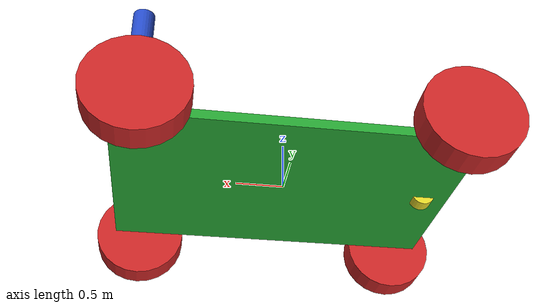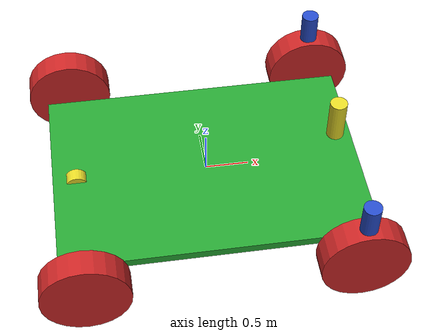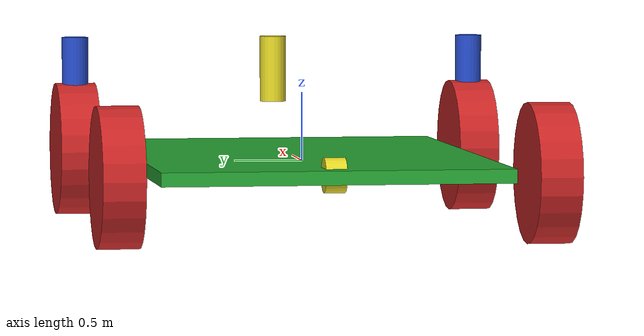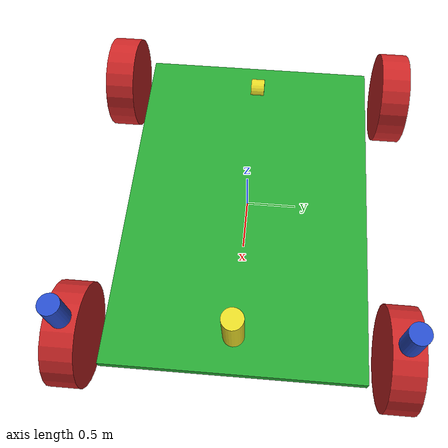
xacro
<?xml version="1.0"?>
<robot name="steer_bot" xmlns:xacro="http://wiki.ros.org/xacro">
  <!-- Include xacro for inertials, materials and wheels -->
  <xacro:include filename="$(find steer_bot_description)/urdf/wheel.xacro" />

  <xacro:property name="robot_namespace" value="/steer_bot" />

  <!-- Gazebo plugins -->
  <gazebo>
    <!-- Load ros_control plugin using the steer_bot_hardware_gazebo
    implementation of the hardware_interface::RobotHW -->

    <plugin name="gazebo_ros_control" filename="libgazebo_ros_control.so">
      <robotNamespace>${robot_namespace}</robotNamespace>
      <robotSimType>steer_bot_hardware_gazebo/SteerBotHardwareGazebo</robotSimType>
      <legacyModeNS>false</legacyModeNS>
    </plugin>

    <plugin name="p3d_base_controller" filename="libgazebo_ros_p3d.so">
      <alwaysOn>true</alwaysOn>
      <updateRate>50.0</updateRate>
      <bodyName>base_link</bodyName>
      <topicName>odom</topicName>
      <gaussianNoise>0.01</gaussianNoise>
      <frameName>map</frameName>
      <xyzOffsets>0 0 0</xyzOffsets>
      <rpyOffsets>0 0 0</rpyOffsets>
    </plugin>

  </gazebo>

  <!-- Math constants -->
  <xacro:property name="deg_to_rad" value="0.01745329251994329577" />

  <!-- Robot base dimensions -->
  <xacro:property name="base_length" value="3.6" />
  <xacro:property name="base_width" value="2.5" />
  <xacro:property name="base_height" value="0.1" />
  <xacro:property name="base_mass" value="0.0001" />

  <!-- Wheel link dimensions -->
  <xacro:property name="wheel_radius" value="0.5" />
  <xacro:property name="wheel_thickness" value="0.3" />
  <xacro:property name="wheel_mass" value="0.0001" />

  <!-- Steering link dimensions -->
  <xacro:property name="steer_radius" value="0.1" />
  <xacro:property name="steer_thickness" value="0.5" />
  <xacro:property name="steer_mass" value="0.0001" />

  <!-- Axle positions -->
  <xacro:property name="axle_offset" value="0.275" />
  <xacro:property name="steer_offset" value="0.1" />

  <!-- Base link -->
  <link name="base_link">
    <kinematic>true</kinematic>
  </link>

  <!-- A fixed joint for to connect base and chassis links -->
  <joint name="base_link" type="fixed">
    <origin xyz="0 0 0" rpy="0 0 0" />
    <parent link="base_link" />
    <child link="chassis_link" />
  </joint>

  <!-- Dummy Chassis link -->
  <link name="chassis_link">
    <visual>
      <origin xyz="0 0 0" rpy="0 0 0" />
      <geometry>
        <box size="${base_length} ${base_width} ${base_height}" />
      </geometry>
      <material name="green" />
    </visual>
    <collision>
      <origin xyz="0 0 0" rpy="0 0 0" />
      <geometry>
        <box size="${base_length} ${base_width} ${base_height}" />
      </geometry>
    </collision>
    <xacro:solid_cuboid_inertial rpy="0 0 0" xyz="0 0 0" mass="${base_mass}" x="${base_length}" y="${base_width}" z="${base_height}" />
  </link>

  <!-- Front steer and rear wheel joints required for ackermann_steering_controller -->
  <xacro:front_steer name="front" parent="chassis" steer_radius="${steer_radius}" steer_thickness="${steer_thickness}" steer_mass="${steer_mass}" base_length="${base_length}" base_width="${base_width}" axle_offset="${axle_offset}" steer_height="${wheel_radius+steer_offset}"></xacro:front_steer>

  <xacro:rear_wheel name="rear" parent="chassis" wheel_radius="${wheel_radius/4}" wheel_thickness="${wheel_thickness/2}" wheel_mass="${wheel_mass/32}">
    <origin xyz="${-base_length/2+axle_offset} 0 0" rpy="${-90 * deg_to_rad} 0 0" />
  </xacro:rear_wheel>

  <!-- Steerable front wheels -->
  <xacro:front_wheel_lr name="front_right" parent="chassis" reflect="-1" wheel_radius="${wheel_radius}" wheel_thickness="${wheel_thickness}" wheel_mass="${wheel_mass}" steer_radius="${steer_radius}" steer_thickness="${steer_thickness}" steer_mass="${steer_mass}" base_length="${base_length}" base_width="${base_width}" axle_offset="${axle_offset}" steer_height="${wheel_radius+steer_offset}"></xacro:front_wheel_lr>
  <xacro:front_wheel_lr name="front_left" parent="chassis" reflect="1" wheel_radius="${wheel_radius}" wheel_thickness="${wheel_thickness}" wheel_mass="${wheel_mass}" steer_radius="${steer_radius}" steer_thickness="${steer_thickness}" steer_mass="${steer_mass}" base_length="${base_length}" base_width="${base_width}" axle_offset="${axle_offset}" steer_height="${wheel_radius+steer_offset}"></xacro:front_wheel_lr>

  <!-- Rear wheels -->
  <xacro:rear_wheel_lr name="rear_right" parent="chassis" wheel_radius="${wheel_radius}" wheel_thickness="${wheel_thickness}" wheel_mass="${wheel_mass}">
    <origin xyz="${-base_length/2+axle_offset} ${-base_width/2-axle_offset} 0" rpy="${-90 * deg_to_rad} 0 0" />
  </xacro:rear_wheel_lr>
  <xacro:rear_wheel_lr name="rear_left" parent="chassis" wheel_radius="${wheel_radius}" wheel_thickness="${wheel_thickness}" wheel_mass="${wheel_mass}">
    <origin xyz="${-base_length/2+axle_offset} ${+base_width/2+axle_offset} 0" rpy="${-90 * deg_to_rad} 0 0" />
  </xacro:rear_wheel_lr>

  <!-- Colour -->
  <gazebo reference="chassis_link">
    <material>Gazebo/Green</material>
    <velocity_decay>
      <linear>0.5</linear>
      <angular>0.5</angular>
    </velocity_decay>
  </gazebo>
  <gazebo reference="base_link">
    <velocity_decay>
      <linear>0.5</linear>
      <angular>0.5</angular>
    </velocity_decay>
  </gazebo>

</robot>

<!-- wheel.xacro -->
<robot name="wheel" xmlns:xacro="http://wiki.ros.org/xacro">
  <!-- Include xacro for materials and inertials -->
  <xacro:include filename="$(find steer_bot_description)/urdf/materials.xacro" />
  <xacro:include filename="$(find steer_bot_description)/urdf/inertials.xacro" />

  <!-- Properties -->
  <xacro:property name="steer_effort" value="100.0" />
  <xacro:property name="steer_velocity" value="5.0" />
  <xacro:property name="steer_limit_deg" value="45.0" />

  <!-- Bicycle model front steering link (required for steer_drive_controller) -->
  <xacro:macro name="front_steer" params="
      name
      parent
      steer_radius
      steer_thickness
      steer_mass
      base_length
      base_width
      axle_offset
      steer_height">
    <link name="${name}_steer_link">
      <kinematic>true</kinematic>

      <visual>
        <origin xyz="0 0 0" rpy="0 0 0" />
        <geometry>
          <cylinder radius="${steer_radius}" length="${steer_thickness}" />
        </geometry>
        <material name="yellow" />
      </visual>
      <collision>
        <origin xyz="0 0 0" rpy="0 0 0" />
        <geometry>
          <cylinder radius="${steer_radius}" length="${steer_thickness}" />
        </geometry>
        <surface>
          <friction>
            <ode>
              <mu>10000000.0</mu>
              <mu2>10000000.0</mu2>
              <slip1>0.0</slip1>
              <slip2>0.0</slip2>
            </ode>
          </friction>
        </surface>
      </collision>
      <xacro:solid_cylinder_inertial rpy="0 0 0" xyz="0 0 0" mass="${steer_mass}" radius="${steer_radius}" length="${steer_thickness}" />
    </link>

    <joint name="${name}_steer_joint" type="revolute">
      <parent link="${parent}_link" />
      <child link="${name}_steer_link" />
      <origin xyz="${base_length/2-axle_offset} 0 ${steer_height}" rpy="0 0 0" />
      <axis xyz="0 0 1" />
      <limit effort="${steer_effort}" lower="${-180.0 * deg_to_rad}" upper="${180.0 * deg_to_rad}" velocity="${steer_velocity}" />
    </joint>

    <transmission name="${name}_steer_joint_trans">
      <type>transmission_interface/SimpleTransmission</type>
      <actuator name="${name}_steer_joint_motor">
        <mechanicalReduction>1</mechanicalReduction>
        <hardwareInterface>hardware_interface/PositionJointInterface</hardwareInterface>
      </actuator>
      <joint name="${name}_steer_joint">
        <hardwareInterface>hardware_interface/PositionJointInterface</hardwareInterface>
      </joint>
    </transmission>

    <gazebo reference="${name}_steer_link">
      <material>Gazebo/Yellow</material>
    </gazebo>
  </xacro:macro>

  <!-- Car steering model front (steerable) wheel links (left/right) -->
  <xacro:macro name="front_wheel_lr" params="
      name
      parent
      reflect
      wheel_radius
      wheel_thickness
      wheel_mass
      steer_radius
      steer_thickness
      steer_mass
      base_length
      base_width
      axle_offset
      steer_height">
    <link name="${name}_steer_link">
      <kinematic>true</kinematic>

      <visual>
        <origin xyz="0 0 0" rpy="0 0 0" />
        <geometry>
          <cylinder radius="${steer_radius}" length="${steer_thickness}" />
        </geometry>
        <material name="blue" />
      </visual>
      <collision>
        <origin xyz="0 0 0" rpy="0 0 0" />
        <geometry>
          <cylinder radius="${steer_radius}" length="${steer_thickness}" />
        </geometry>
        <surface>
          <friction>
            <ode>
              <mu>10000000.0</mu>
              <mu2>10000000.0</mu2>
              <slip1>0.0</slip1>
              <slip2>0.0</slip2>
            </ode>
          </friction>
        </surface>
      </collision>
      <xacro:solid_cylinder_inertial rpy="0 0 0" xyz="0 0 0" mass="${steer_mass}" radius="${steer_radius}" length="${steer_thickness}" />
    </link>

    <joint name="${name}_steer_joint" type="revolute">
      <parent link="${parent}_link" />
      <child link="${name}_steer_link" />
      <origin xyz="${base_length/2-axle_offset} ${reflect*(base_width/2+axle_offset)} ${steer_height}" rpy="0 0 0" />
      <axis xyz="0 0 1" />
      <limit effort="${steer_effort}" lower="${steer_limit_deg * deg_to_rad * -1.0}" upper="${steer_limit_deg * deg_to_rad}" velocity="${steer_velocity}" />
    </joint>

    <link name="${name}_wheel_link">
      <kinematic>true</kinematic>

      <visual>
        <origin xyz="0 0 0" rpy="0 0 0" />
        <geometry>
          <cylinder radius="${wheel_radius}" length="${wheel_thickness}" />
        </geometry>
        <material name="red" />
      </visual>
      <collision>
        <origin xyz="0 0 0" rpy="0 0 0" />
        <geometry>
          <cylinder radius="${wheel_radius}" length="${wheel_thickness}" />
        </geometry>
        <surface>
          <friction>
            <ode>
              <mu>10000000.0</mu>
              <mu2>10000000.0</mu2>
              <slip1>0.0</slip1>
              <slip2>0.0</slip2>
            </ode>
          </friction>
        </surface>
      </collision>
      <xacro:solid_cylinder_inertial rpy="0 0 0" xyz="0 0 0" mass="${wheel_mass}" radius="${wheel_radius}" length="${wheel_thickness}" />
    </link>

    <joint name="${name}_wheel_joint" type="continuous">
      <parent link="${name}_steer_link" />
      <child link="${name}_wheel_link" />
      <origin xyz="0 0 ${-steer_height}" rpy="${-90 * deg_to_rad} 0 0" />
      <axis xyz="0 0 1" />
      <joint_properties damping="1000.0" friction="1000.0" />
    </joint>

    <transmission name="${name}_steer_joint_trans">
      <type>transmission_interface/SimpleTransmission</type>
      <actuator name="${name}_steer_joint_motor">
        <mechanicalReduction>1</mechanicalReduction>
        <hardwareInterface>hardware_interface/PositionJointInterface</hardwareInterface>
      </actuator>
      <joint name="${name}_steer_joint">
        <hardwareInterface>hardware_interface/PositionJointInterface</hardwareInterface>
      </joint>
    </transmission>

    <transmission name="${name}_wheel_joint_trans">
      <type>transmission_interface/SimpleTransmission</type>
      <actuator name="${name}_wheel_joint_motor">
        <mechanicalReduction>1</mechanicalReduction>
        <hardwareInterface>hardware_interface/VelocityJointInterface</hardwareInterface>
      </actuator>
      <joint name="${name}_wheel_joint">
        <hardwareInterface>hardware_interface/VelocityJointInterface</hardwareInterface>
      </joint>
    </transmission>

    <gazebo reference="${name}_steer_link">
      <material>Gazebo/Blue</material>
    </gazebo>

    <gazebo reference="${name}_wheel_link">
      <material>Gazebo/Red</material>
      <minDepth>0.005</minDepth>
			<mu value="10000000.0"/>
			<mu2 value="1.0"/>
			<kp value="10000000.0" />
			<kd value="1.0" />
			<fdir1 value="1 0 0"/>
    </gazebo>
  </xacro:macro>

  <!-- Bicycle model rear wheel link (required for steer_drive_controller) -->
  <xacro:macro name="rear_wheel" params="
      name
      parent
      wheel_radius
      wheel_thickness
      wheel_mass
      *origin">
    <link name="${name}_wheel_link">
      <kinematic>true</kinematic>
      <velocity_decay>
        <linear>100</linear>
        <angular>100</angular>
      </velocity_decay>
      <visual>
        <origin xyz="0 0 0" rpy="0 0 0" />
        <geometry>
          <cylinder radius="${wheel_radius}" length="${wheel_thickness}" />
        </geometry>
        <material name="yellow" />
      </visual>
      <collision>
        <origin xyz="0 0 0" rpy="0 0 0" />
        <geometry>
          <cylinder radius="${wheel_radius}" length="${wheel_thickness}" />
        </geometry>
        <surface>
          <friction>
            <ode>
              <mu>10000000.0</mu>
              <mu2>10000000.0</mu2>
              <slip1>0.0</slip1>
              <slip2>0.0</slip2>
            </ode>
          </friction>
        </surface>
      </collision>
      <xacro:solid_cylinder_inertial rpy="0 0 0" xyz="0 0 0" mass="${wheel_mass}" radius="${wheel_radius}" length="${wheel_thickness}" />
    </link>

    <joint name="${name}_wheel_joint" type="continuous">
      <parent link="${parent}_link" />
      <child link="${name}_wheel_link" />
      <xacro:insert_block name="origin" />
      <axis xyz="0 0 1" />
      <joint_properties damping="1000.0" friction="1000.0" />

    </joint>

    <transmission name="${name}_wheel_joint_trans">
      <type>transmission_interface/SimpleTransmission</type>
      <actuator name="${name}_wheel_joint_motor">
        <mechanicalReduction>1</mechanicalReduction>
        <hardwareInterface>hardware_interface/VelocityJointInterface</hardwareInterface>
      </actuator>
      <joint name="${name}_wheel_joint">
        <hardwareInterface>hardware_interface/VelocityJointInterface</hardwareInterface>
      </joint>
    </transmission>

    <gazebo reference="${name}_wheel_link">
      <material>Gazebo/Yellow</material>
      <minDepth>0.005</minDepth>
			<mu value="10000000.0"/>
			<mu2 value="1.0"/>
			<kp value="10000000.0" />
			<kd value="1.0" />
			<fdir1 value="1 0 0"/>
    </gazebo>
  </xacro:macro>

  <!-- Bicycle model front wheel link (passive - no transmission) -->
  <xacro:macro name="front_wheel" params="
     name
     parent
     wheel_radius
     wheel_thickness
     wheel_mass
     *origin">
    <link name="${name}_wheel_link">
      <kinematic>true</kinematic>

      <visual>
        <origin xyz="0 0 0" rpy="0 0 0" />
        <geometry>
          <cylinder radius="${wheel_radius}" length="${wheel_thickness}" />
        </geometry>
        <material name="yellow" />
      </visual>
      <collision>
        <origin xyz="0 0 0" rpy="0 0 0" />
        <geometry>
          <cylinder radius="${wheel_radius}" length="${wheel_thickness}" />
        </geometry>
        <surface>
          <friction>
            <ode>
              <mu>10000000.0</mu>
              <mu2>10000000.0</mu2>
              <slip1>0.0</slip1>
              <slip2>0.0</slip2>
            </ode>
          </friction>
        </surface>
      </collision>
      <xacro:solid_cylinder_inertial rpy="0 0 0" xyz="0 0 0" mass="${wheel_mass}" radius="${wheel_radius}" length="${wheel_thickness}" />
    </link>

    <joint name="${name}_wheel_joint" type="continuous">
      <parent link="${parent}_link" />
      <child link="${name}_wheel_link" />
      <xacro:insert_block name="origin" />
      <axis xyz="0 0 1" />
    </joint>

    <gazebo reference="${name}_wheel_link">
      <material>Gazebo/Yellow</material>
      <minDepth>0.005</minDepth>
      <mu value="10000000.0" />
      <mu2 value="10000000.0" />
      <kp value="10000000.0" />
      <kd value="1.0" />
      <fdir1 value="1 0 0" />
    </gazebo>

    <gazebo reference="${name}_wheel_joint">
      <provideFeedback>true</provideFeedback>
    </gazebo>
  </xacro:macro>

  <!-- Car steering model rear wheel links (left/right) -->
  <xacro:macro name="rear_wheel_lr" params="
      name
      parent
      wheel_radius
      wheel_thickness
      wheel_mass
      *origin">
    <link name="${name}_wheel_link">
      <kinematic>true</kinematic>

      <visual>
        <origin xyz="0 0 0" rpy="0 0 0" />
        <geometry>
          <cylinder radius="${wheel_radius}" length="${wheel_thickness}" />
        </geometry>
        <material name="red" />
      </visual>
      <collision>
        <origin xyz="0 0 0" rpy="0 0 0" />
        <geometry>
          <cylinder radius="${wheel_radius}" length="${wheel_thickness}" />
        </geometry>
        <surface>
          <friction>
            <ode>
              <mu>10000000.0</mu>
              <mu2>10000000.0</mu2>
              <slip1>0.0</slip1>
              <slip2>0.0</slip2>
            </ode>
          </friction>
        </surface>
      </collision>
      <xacro:solid_cylinder_inertial rpy="0 0 0" xyz="0 0 0" mass="${wheel_mass}" radius="${wheel_radius}" length="${wheel_thickness}" />
    </link>

    <joint name="${name}_wheel_joint" type="continuous">
      <parent link="${parent}_link" />
      <child link="${name}_wheel_link" />
      <xacro:insert_block name="origin" />
      <axis xyz="0 0 1" />
    </joint>

    <transmission name="${name}_wheel_joint_trans">
      <type>transmission_interface/SimpleTransmission</type>
      <actuator name="${name}_wheel_joint_motor">
        <mechanicalReduction>1</mechanicalReduction>
        <hardwareInterface>hardware_interface/VelocityJointInterface</hardwareInterface>
      </actuator>
      <joint name="${name}_wheel_joint">
        <hardwareInterface>hardware_interface/VelocityJointInterface</hardwareInterface>
      </joint>
    </transmission>

    <gazebo reference="${name}_wheel_link">
      <minDepth>0.005</minDepth>
      <material>Gazebo/Red</material>
      <mu value="10000000.0" />
      <mu2 value="10000000.0" />
      <kp value="10000000.0" />
      <kd value="1.0" />
      <fdir1 value="1 0 0" />
    </gazebo>
  </xacro:macro>
</robot>
